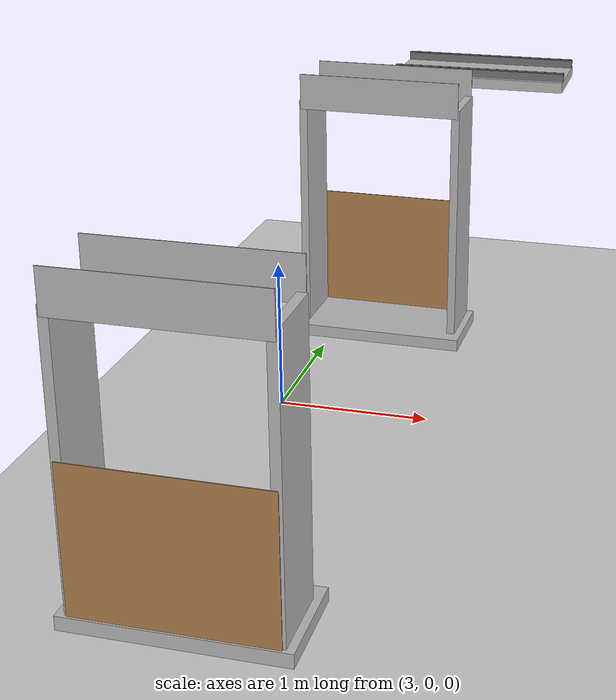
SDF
<sdf version="1.6">
 <world name="default">
  <model name="ground_plane">
   <static>1</static>
   <link name="link">
    <collision name="collision">
     <geometry><plane><normal>0 0 1</normal><size>100 100</size></plane></geometry>
     <surface>
      <contact><collide_bitmask>65535</collide_bitmask></contact>
      <friction><ode><mu>100</mu><mu2>50</mu2></ode></friction>
     </surface>
    </collision>
    <visual name="visual">
     <cast_shadows>0</cast_shadows>
     <geometry><plane><normal>0 0 1</normal><size>100 100</size></plane></geometry>
     <material>
      <script><uri>file://media/materials/scripts/gazebo.material</uri><name>Gazebo/Grey</name></script>
     </material>
    </visual>
   </link>
  </model>
  <model name="frc2016_drawbridge">
   <link name="base">
    <inertial>
     <mass>10</mass>
     <pose>0 0 1 0 -0 0</pose>
     <inertia><ixx>3.64907</ixx><ixy>0</ixy><ixz>0</ixz><iyy>4.67075</iyy><iyz>0</iyz><izz>1.66649</izz></inertia>
    </inertial>
    <visual name="platform">
     <pose>0 0 0.0425 0 -0 0</pose>
     <geometry><box><size>1.27 0.5969 0.085</size></box></geometry>
    </visual>
    <collision name="platform">
     <pose>0 0 0.0425 0 -0 0</pose>
     <geometry><box><size>1.27 0.5969 0.085</size></box></geometry>
    </collision>
    <visual name="right_wall">
     <pose>0.55879 0.04444 0.889 0 -0 0</pose>
     <geometry><box><size>0.05715 0.45698 1.77165</size></box></geometry>
    </visual>
    <collision name="right_wall">
     <pose>0.55879 0.04444 0.889 0 -0 0</pose>
     <geometry><box><size>0.05715 0.45698 1.77165</size></box></geometry>
    </collision>
    <visual name="left_wall">
     <pose>-0.55879 0.04444 0.889 0 -0 0</pose>
     <geometry><box><size>0.05715 0.45698 1.77165</size></box></geometry>
    </visual>
    <collision name="left_wall">
     <pose>-0.55879 0.04444 0.889 0 -0 0</pose>
     <geometry><box><size>0.05715 0.45698 1.77165</size></box></geometry>
    </collision>
    <visual name="front_upper_wall">
     <pose>0 0.27611 1.84286 0 -0 0</pose>
     <geometry><box><size>1.1557 0.006347 0.254</size></box></geometry>
    </visual>
    <collision name="front_upper_wall">
     <pose>0 0.27611 1.84286 0 -0 0</pose>
     <geometry><box><size>1.1557 0.006347 0.254</size></box></geometry>
    </collision>
    <visual name="back_upper_wall">
     <pose>0 -0.18722 1.84286 0 -0 0</pose>
     <geometry><box><size>1.1557 0.006347 0.254</size></box></geometry>
    </visual>
    <collision name="back_upper_wall">
     <pose>0 -0.18722 1.84286 0 -0 0</pose>
     <geometry><box><size>1.1557 0.006347 0.254</size></box></geometry>
    </collision>
   </link>
   <link name="bridge">
    <pose>0 0.28245 0.50577 0 -0 0</pose>
    <inertial>
     <mass>2</mass>
     <pose>0 -0.28245 -0.50577 0 -0 0</pose>
     <inertia>
      <ixx>0.139361</ixx>
      <ixy>0</ixy>
      <ixz>0</ixz>
      <iyy>0.357088</iyy>
      <iyz>0</iyz>
      <izz>0.217741</izz>
     </inertia>
    </inertial>
    <visual name="visual">
     <geometry><box><size>1.14298 0.006347 0.9144</size></box></geometry>
     <material><script><name>Gazebo/WoodFloor</name><uri>__default__</uri></script></material>
    </visual>
    <collision name="collision"><geometry><box><size>1.14298 0.006347 0.9144</size></box></geometry></collision>
   </link>
   <joint name="bridge_joint" type="revolute">
    <pose>0 0 -0.4172 0 -0 0</pose>
    <parent>base</parent>
    <child>bridge</child>
    <axis>
     <xyz>1 0 0</xyz>
     <limit><lower>-2</lower><upper>0</upper></limit>
     <use_parent_model_frame>0</use_parent_model_frame>
     <dynamics><spring_reference>0</spring_reference><spring_stiffness>0</spring_stiffness></dynamics>
    </axis>
   </joint>
   <pose>3.34539 1.45057 -3e-06 2e-06 4e-06 -0.012512</pose>
  </model>
  <model name="frc2016_drawbridge_clone">
   <link name="base">
    <inertial>
     <mass>10</mass>
     <pose>0 0 1 0 -0 0</pose>
     <inertia><ixx>3.64907</ixx><ixy>0</ixy><ixz>0</ixz><iyy>4.67075</iyy><iyz>0</iyz><izz>1.66649</izz></inertia>
    </inertial>
    <visual name="platform">
     <pose>0 0 0.0425 0 -0 0</pose>
     <geometry><box><size>1.27 0.5969 0.085</size></box></geometry>
    </visual>
    <collision name="platform">
     <pose>0 0 0.0425 0 -0 0</pose>
     <geometry><box><size>1.27 0.5969 0.085</size></box></geometry>
    </collision>
    <visual name="right_wall">
     <pose>0.55879 0.04444 0.889 0 -0 0</pose>
     <geometry><box><size>0.05715 0.45698 1.77165</size></box></geometry>
    </visual>
    <collision name="right_wall">
     <pose>0.55879 0.04444 0.889 0 -0 0</pose>
     <geometry><box><size>0.05715 0.45698 1.77165</size></box></geometry>
    </collision>
    <visual name="left_wall">
     <pose>-0.55879 0.04444 0.889 0 -0 0</pose>
     <geometry><box><size>0.05715 0.45698 1.77165</size></box></geometry>
    </visual>
    <collision name="left_wall">
     <pose>-0.55879 0.04444 0.889 0 -0 0</pose>
     <geometry><box><size>0.05715 0.45698 1.77165</size></box></geometry>
    </collision>
    <visual name="front_upper_wall">
     <pose>0 0.27611 1.84286 0 -0 0</pose>
     <geometry><box><size>1.1557 0.006347 0.254</size></box></geometry>
    </visual>
    <collision name="front_upper_wall">
     <pose>0 0.27611 1.84286 0 -0 0</pose>
     <geometry><box><size>1.1557 0.006347 0.254</size></box></geometry>
    </collision>
    <visual name="back_upper_wall">
     <pose>0 -0.18722 1.84286 0 -0 0</pose>
     <geometry><box><size>1.1557 0.006347 0.254</size></box></geometry>
    </visual>
    <collision name="back_upper_wall">
     <pose>0 -0.18722 1.84286 0 -0 0</pose>
     <geometry><box><size>1.1557 0.006347 0.254</size></box></geometry>
    </collision>
   </link>
   <link name="bridge">
    <pose>0 0.28245 0.50577 0 -0 0</pose>
    <inertial>
     <mass>2</mass>
     <pose>0 -0.28245 -0.50577 0 -0 0</pose>
     <inertia>
      <ixx>0.139361</ixx>
      <ixy>0</ixy>
      <ixz>0</ixz>
      <iyy>0.357088</iyy>
      <iyz>0</iyz>
      <izz>0.217741</izz>
     </inertia>
    </inertial>
    <visual name="visual">
     <geometry><box><size>1.14298 0.006347 0.9144</size></box></geometry>
     <material><script><name>Gazebo/WoodFloor</name><uri>__default__</uri></script></material>
    </visual>
    <collision name="collision"><geometry><box><size>1.14298 0.006347 0.9144</size></box></geometry></collision>
   </link>
   <joint name="bridge_joint" type="revolute">
    <pose>0 0 -0.4172 0 -0 0</pose>
    <parent>base</parent>
    <child>bridge</child>
    <axis>
     <xyz>1 0 0</xyz>
     <limit><lower>-2</lower><upper>0</upper></limit>
     <use_parent_model_frame>0</use_parent_model_frame>
     <dynamics><spring_reference>0</spring_reference><spring_stiffness>0</spring_stiffness></dynamics>
    </axis>
   </joint>
   <pose>3.33692 -2.48515 -2e-06 -2e-06 2e-06 -3.1387</pose>
  </model>
  <model name="frc2016_moat_clone_1_clone_clone">
   <static>1</static>
   <link name="link">
    <inertial>
     <mass>10</mass>
     <pose>0 0 0.06738 0 -0 0</pose>
     <inertia><ixx>0.312195</ixx><ixy>0</ixy><ixz>0</ixz><iyy>1.35927</iyy><iyz>0</iyz><izz>1.64109</izz></inertia>
    </inertial>
    <visual name="platform">
     <pose>0 0 0.0381 0 -0 0</pose>
     <geometry><box><size>1.27 0.5969 0.0762</size></box></geometry>
    </visual>
    <collision name="platform">
     <pose>0 0 0.0381 0 -0 0</pose>
     <geometry><box><size>1.27 0.5969 0.0762</size></box></geometry>
    </collision>
    <visual name="tube1_side1">
     <pose>0 -0.25876 0.10301 0 -0 0</pose>
     <geometry><box><size>1.27 0.003175 0.0635</size></box></geometry>
     <material><ambient>0.46 0.46 0.46 1</ambient><diffuse>0.46 0.46 0.46 1</diffuse></material>
    </visual>
    <collision name="tube1_side1">
     <pose>0 -0.25876 0.10301 0 -0 0</pose>
     <geometry><box><size>1.27 0.003175 0.0635</size></box></geometry>
    </collision>
    <visual name="tube1_side2">
     <pose>0 -0.22384 0.10301 0 -0 0</pose>
     <geometry><box><size>1.27 0.003175 0.0635</size></box></geometry>
     <material><ambient>0.46 0.46 0.46 1</ambient><diffuse>0.46 0.46 0.46 1</diffuse></material>
    </visual>
    <collision name="tube1_side2">
     <pose>0 -0.22384 0.10301 0 -0 0</pose>
     <geometry><box><size>1.27 0.003175 0.0635</size></box></geometry>
    </collision>
    <visual name="tube1_top">
     <pose>0 -0.2413 0.13317 0 -0 0</pose>
     <geometry><box><size>1.27 0.0381 0.003175</size></box></geometry>
     <material><ambient>0.46 0.46 0.46 1</ambient><diffuse>0.46 0.46 0.46 1</diffuse></material>
    </visual>
    <collision name="tube1_top">
     <pose>0 -0.2413 0.13317 0 -0 0</pose>
     <geometry><box><size>1.27 0.0381 0.003175</size></box></geometry>
    </collision>
    <visual name="tube2_side1">
     <pose>0 0.22384 0.10301 0 -0 0</pose>
     <geometry><box><size>1.27 0.003175 0.0635</size></box></geometry>
     <material><ambient>0.46 0.46 0.46 1</ambient><diffuse>0.46 0.46 0.46 1</diffuse></material>
    </visual>
    <collision name="tube2_side1">
     <pose>0 0.22384 0.10301 0 -0 0</pose>
     <geometry><box><size>1.27 0.003175 0.0635</size></box></geometry>
    </collision>
    <visual name="tube2_side2">
     <pose>0 0.25876 0.10301 0 -0 0</pose>
     <geometry><box><size>1.27 0.003175 0.0635</size></box></geometry>
     <material><ambient>0.46 0.46 0.46 1</ambient><diffuse>0.46 0.46 0.46 1</diffuse></material>
    </visual>
    <collision name="tube2_side2">
     <pose>0 0.25876 0.10301 0 -0 0</pose>
     <geometry><box><size>1.27 0.003175 0.0635</size></box></geometry>
    </collision>
    <visual name="tube2_top">
     <pose>0 0.2413 0.13317 0 -0 0</pose>
     <geometry><box><size>1.27 0.0381 0.003175</size></box></geometry>
     <material><ambient>0.46 0.46 0.46 1</ambient><diffuse>0.46 0.46 0.46 1</diffuse></material>
    </visual>
    <collision name="tube2_top">
     <pose>0 0.2413 0.13317 0 -0 0</pose>
     <geometry><box><size>1.27 0.0381 0.003175</size></box></geometry>
    </collision>
   </link>
   <pose>3.90802 2.32569 1.76302 0 -0 0</pose>
  </model>
 </world>
</sdf>
